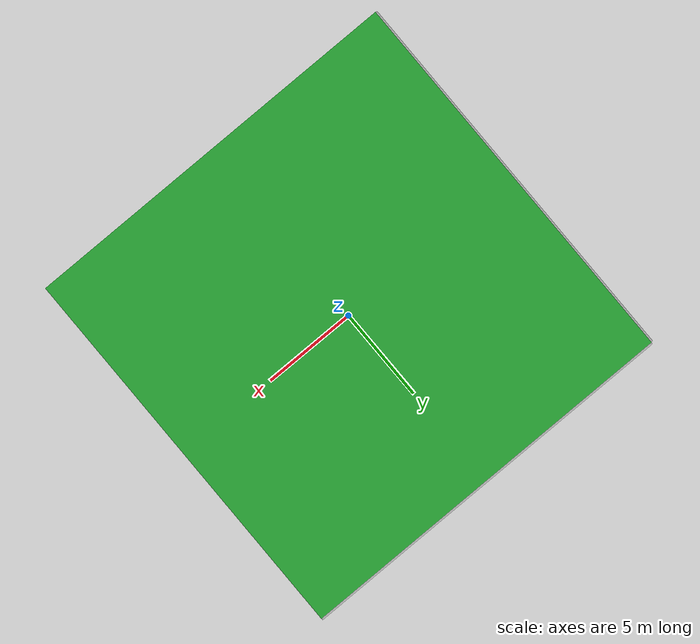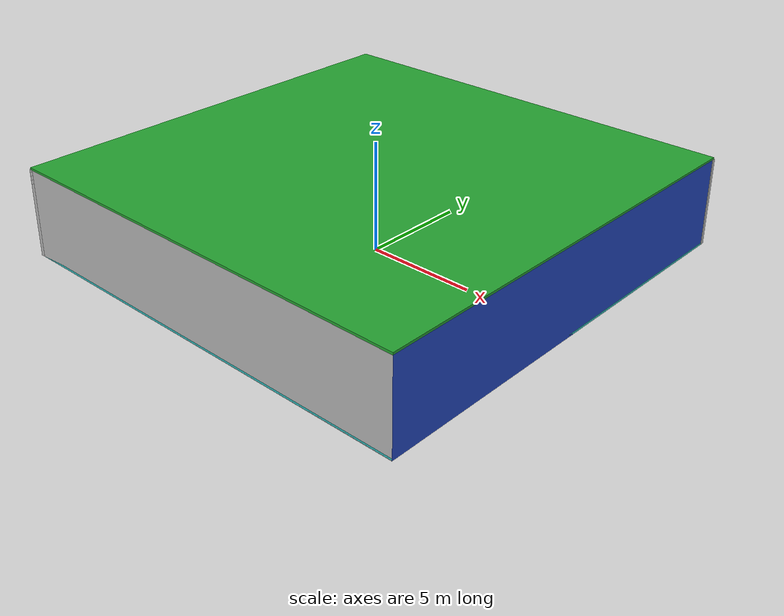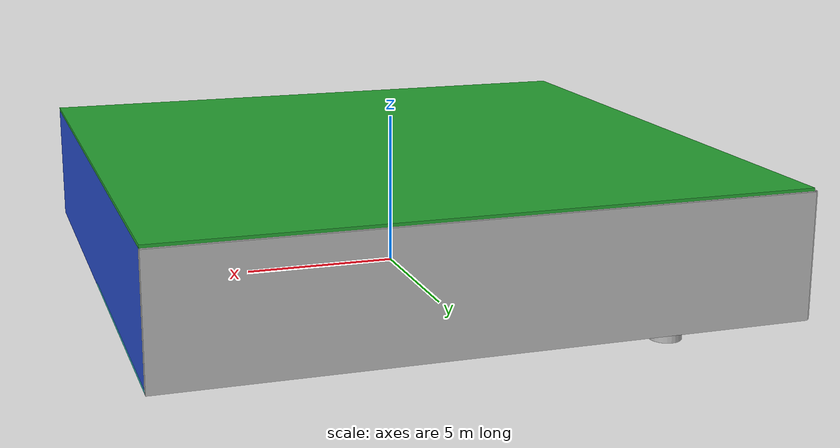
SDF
<sdf version="1.4">
 <world name="default">
  <physics type="ode">
   <max_step_size>0.001</max_step_size>
   <real_time_factor>1</real_time_factor>
   <real_time_update_rate>1000</real_time_update_rate>
   <gravity>0 0 -9.8</gravity>
  </physics>
  <scene><ambient>0.4 0.4 0.4 1</ambient><background>0.7 0.7 0.7 1</background><shadows>1</shadows></scene>
  <model name="Surrounding">
   <static>1</static>
   <link name="Ceiling">
    <collision name="Ceiling_Collision"><geometry><box><size>20 20 0.1</size></box></geometry></collision>
    <visual name="Ceiling_Visual">
     <geometry><box><size>20 20 0.1</size></box></geometry>
     <material>
      <script><uri>file://media/materials/scripts/gazebo.material</uri><name>Gazebo/Green</name></script>
     </material>
    </visual>
    <pose>0 0 4.05 0 0 0</pose>
   </link>
   <link name="Wall_South">
    <collision name="Wall_South_Collision">
     <geometry><box><size>20 0 4</size></box></geometry>
     <pose>0 0 2 0 -0 0</pose>
    </collision>
    <visual name="Wall_South_Visual">
     <pose>0 0 2 0 -0 0</pose>
     <geometry><box><size>20 0 4</size></box></geometry>
     <material>
      <script><uri>file://media/materials/scripts/gazebo.material</uri><name>Gazebo/LightOn</name></script>
     </material>
    </visual>
    <velocity_decay><linear>0</linear><angular>0</angular></velocity_decay>
    <pose>0 -10 0 0 -0 0</pose>
   </link>
   <link name="Wall_East">
    <collision name="Wall_21_Collision">
     <geometry><box><size>20 0 4</size></box></geometry>
     <pose>0 0 2 0 -0 0</pose>
    </collision>
    <visual name="Wall_21_Visual">
     <pose>0 0 2 0 -0 0</pose>
     <geometry><box><size>20 0 4</size></box></geometry>
     <material>
      <script><uri>file://media/materials/scripts/gazebo.material</uri><name>Gazebo/BlueGlow</name></script>
     </material>
    </visual>
    <velocity_decay><linear>0</linear><angular>0</angular></velocity_decay>
    <pose>10 0 0 0 -0 1.5708</pose>
   </link>
   <link name="Wall_North">
    <collision name="Wall_22_Collision">
     <geometry><box><size>20 0.2 4</size></box></geometry>
     <pose>0 0 2 0 -0 0</pose>
    </collision>
    <visual name="Wall_22_Visual">
     <pose>0 0 2 0 -0 0</pose>
     <geometry><box><size>20 0.2 4</size></box></geometry>
     <material>
      <script><uri>file://media/materials/scripts/gazebo.material</uri><name>Gazebo/LightOff</name></script>
     </material>
    </visual>
    <velocity_decay><linear>0</linear><angular>0</angular></velocity_decay>
    <pose>0 10 0 0 -0 0</pose>
   </link>
   <link name="Wall_West">
    <collision name="Wall_23_Collision">
     <geometry><box><size>20 0.2 4</size></box></geometry>
     <pose>0 0 2 0 -0 0</pose>
    </collision>
    <visual name="Wall_23_Visual">
     <pose>0 0 2 0 -0 0</pose>
     <geometry><box><size>20 0.2 4</size></box></geometry>
     <material>
      <script><uri>file://media/materials/scripts/gazebo.material</uri><name>Gazebo/CloudySky</name></script>
     </material>
    </visual>
    <velocity_decay><linear>0</linear><angular>0</angular></velocity_decay>
    <pose>-10 0 0 0 0 -1.5708</pose>
   </link>
   <link name="Ground_link">
    <collision name="collision">
     <pose>0 0 .05 0 -0 0</pose>
     <geometry><box><size>20 20 0.1</size></box></geometry>
    </collision>
    <visual name="visual">
     <pose>0 0 .05 0 -0 0</pose>
     <geometry><box><size>20 20 0.1</size></box></geometry>
     <material>
      <script><uri>file://media/materials/scripts/gazebo.material</uri><name>Gazebo/TurquoiseGlow</name></script>
     </material>
    </visual>
   </link>
   <static>1</static>
  </model>
  <spherical_coordinates>
   <surface_model>EARTH_WGS84</surface_model>
   <latitude_deg>0</latitude_deg>
   <longitude_deg>0</longitude_deg>
   <elevation>0</elevation>
   <heading_deg>0</heading_deg>
  </spherical_coordinates>
  <light name="lightball_0" type="diffuse">
   <diffuse>0.8 0.8 0.8 1</diffuse>
   <specular>0.2 0.2 0.2 1</specular>
   <attenuation>
    <range>100</range>
    <constant>0.7</constant>
    <linear>0.01</linear>
    <quadratic>0.001</quadratic>
   </attenuation>
   <direction>-0.5 0.1 -0.9</direction>
   <pose>0.14890121639 -6.4431062316 2.58292959252 0 0 0</pose>
  </light>
  <light name="lightball_1" type="diffuse">
   <diffuse>0.8 0.8 0.8 1</diffuse>
   <specular>0.2 0.2 0.2 1</specular>
   <attenuation>
    <range>100</range>
    <constant>0.7</constant>
    <linear>0.01</linear>
    <quadratic>0.001</quadratic>
   </attenuation>
   <direction>-0.5 0.1 -0.9</direction>
   <pose>-3.10546994066 7.18456205567 3.16803695003 0 0 0</pose>
  </light>
  <light name="lightball_2" type="diffuse">
   <diffuse>0.8 0.8 0.8 1</diffuse>
   <specular>0.2 0.2 0.2 1</specular>
   <attenuation>
    <range>100</range>
    <constant>0.7</constant>
    <linear>0.01</linear>
    <quadratic>0.001</quadratic>
   </attenuation>
   <direction>-0.5 0.1 -0.9</direction>
   <pose>6.2492673444 8.14241761328 2.92204146449 0 0 0</pose>
  </light>
  <light name="lightball_3" type="diffuse">
   <diffuse>0.8 0.8 0.8 1</diffuse>
   <specular>0.2 0.2 0.2 1</specular>
   <attenuation>
    <range>100</range>
    <constant>0.7</constant>
    <linear>0.01</linear>
    <quadratic>0.001</quadratic>
   </attenuation>
   <direction>-0.5 0.1 -0.9</direction>
   <pose>-1.27469888282 1.88182955799 2.09107198263 0 0 0</pose>
  </light>
  <light name="lightball_4" type="diffuse">
   <diffuse>0.8 0.8 0.8 1</diffuse>
   <specular>0.2 0.2 0.2 1</specular>
   <attenuation>
    <range>100</range>
    <constant>0.7</constant>
    <linear>0.01</linear>
    <quadratic>0.001</quadratic>
   </attenuation>
   <direction>-0.5 0.1 -0.9</direction>
   <pose>0.0206812226098 2.81632660003 3.64507138465 0 0 0</pose>
  </light>
  <include>
   <uri>model://textured_shapes</uri>
   <pose>-7.9546282074 3.87224211297 0 0 0 2.42393928762</pose>
  </include>
  <include>
   <uri>model://construction_cone</uri>
   <pose>-3.70000744875 -7.30870175353 0 0 0 2.44211232826</pose>
  </include>
  <include><uri>model://table</uri><pose>-4.80716774178 4.34417384072 0 0 0 0.463302549669</pose></include>
  <include>
   <uri>model://textured_shapes</uri>
   <pose>-4.87727448969 7.77838399347 0 0 0 0.696516534787</pose>
  </include>
  <include>
   <uri>model://construction_cone</uri>
   <pose>-1.58544812641 -3.98041276311 0 0 0 2.45829962978</pose>
  </include>
 </world>
</sdf>

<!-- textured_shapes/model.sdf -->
<sdf version="1.6">
  <model name="textured_shapes">
    <pose>0 0 0.5 0 0 0</pose>
    <link name="box">
      <pose>0 -1.5 0 0 0 0</pose>
      <collision name="collision">
        <geometry>
          <box>
            <size>1 1 1</size>
          </box>
        </geometry>
      </collision>
      <visual name="visual">
        <geometry>
          <box>
            <size>1 1 1</size>
          </box>
        </geometry>
        <material>
          <script>
            <uri>model://../model_source/models/textured_shapes/materials/scripts</uri>
            <uri>model://../model_source/models/textured_shapes/materials/textures</uri>
            <name>TexturedShape/Squares</name>
          </script>
        </material>
      </visual>
    </link>
    <link name="sphere">
      <collision name="collision">
        <geometry>
          <sphere>
            <radius>0.5</radius>
          </sphere>
        </geometry>
      </collision>
      <visual name="visual">
        <geometry>
          <sphere>
            <radius>0.5</radius>
          </sphere>
        </geometry>
        <material>
          <script>
            <uri>model://../model_source/models/textured_shapes/materials/scripts</uri>
            <uri>model://../model_source/models/textured_shapes/materials/textures</uri>
            <name>TexturedShape/Squares</name>
          </script>
        </material>
      </visual>
    </link>
    <link name="cylinder">
      <pose>0 1.5 0 0 0 0</pose>
      <collision name="collision">
        <geometry>
          <cylinder>
            <radius>0.5</radius>
            <length>1</length>
          </cylinder>
        </geometry>
      </collision>
      <visual name="visual">
        <geometry>
          <cylinder>
            <radius>0.5</radius>
            <length>1</length>
          </cylinder>
        </geometry>
        <material>
          <script>
            <uri>model://../model_source/models/textured_shapes/materials/scripts</uri>
            <uri>model://../model_source/models/textured_shapes/materials/textures</uri>
            <name>TexturedShape/Squares</name>
          </script>
        </material>
      </visual>
    </link>
  </model>
</sdf>

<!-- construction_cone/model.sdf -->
<sdf version="1.5">
  <model name="Construction Cone">
    <link name="link">
      <collision name="collision">
        <geometry>
          <mesh>
            <scale>10 10 10</scale>
            <uri>file://isr-testbed/construction_cone/meshes/construction_cone.dae</uri>
          </mesh>
        </geometry>
      </collision>
      <visual name="visual">
        <geometry>
          <mesh>
            <scale>10 10 10</scale>
            <uri>file://isr-testbed/construction_cone/meshes/construction_cone.dae</uri>
          </mesh>
        </geometry>
      </visual>
    </link>
  </model>
</sdf>

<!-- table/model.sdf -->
<sdf version="1.5">
  <model name="table">
    <static>true</static>
    <link name="link">
      <collision name="surface">
        <pose>0 0 1.0 0 0 0</pose>
        <geometry>
          <box>
            <size>1.5 0.8 0.03</size>
          </box>
        </geometry>
        <surface>
          <friction>
            <ode>
              <mu>0.6</mu>
              <mu2>0.6</mu2>
            </ode>
          </friction>
        </surface>
      </collision>
      <visual name="visual1">
        <pose>0 0 1.0 0 0 0</pose>
        <geometry>
          <box>
            <size>1.5 0.8 0.03</size>
          </box>
        </geometry>
        <material>
          <script>
            <uri>model://media/materials/scripts/gazebo.material</uri>
            <name>Gazebo/Wood</name>
          </script>
        </material>
      </visual>
      <collision name="front_left_leg">
        <pose>0.68 0.38 0.5 0 0 0</pose>
        <geometry>
          <cylinder>
            <radius>0.02</radius>
            <length>1.0</length>
          </cylinder>
        </geometry>
      </collision>
      <visual name="front_left_leg">
        <pose>0.68 0.38 0.5 0 0 0</pose>
        <geometry>
          <cylinder>
            <radius>0.02</radius>
            <length>1.0</length>
          </cylinder>
        </geometry>
        <material>
          <script>
            <uri>model://media/materials/scripts/gazebo.material</uri>
            <name>Gazebo/Grey</name>
          </script>
        </material>
      </visual>
      <collision name="front_right_leg">
        <pose>0.68 -0.38 0.5 0 0 0</pose>
        <geometry>
          <cylinder>
            <radius>0.02</radius>
            <length>1.0</length>
          </cylinder>
        </geometry>
      </collision>
      <visual name="front_right_leg">
        <pose>0.68 -0.38 0.5 0 0 0</pose>
        <geometry>
          <cylinder>
            <radius>0.02</radius>
            <length>1.0</length>
          </cylinder>
        </geometry>
        <material>
          <script>
            <uri>model://media/materials/scripts/gazebo.material</uri>
            <name>Gazebo/Grey</name>
          </script>
        </material>
      </visual>
      <collision name="back_right_leg">
        <pose>-0.68 -0.38 0.5 0 0 0</pose>
        <geometry>
          <cylinder>
            <radius>0.02</radius>
            <length>1.0</length>
          </cylinder>
        </geometry>
      </collision>
      <visual name="back_right_leg">
        <pose>-0.68 -0.38 0.5 0 0 0</pose>
        <geometry>
          <cylinder>
            <radius>0.02</radius>
            <length>1.0</length>
          </cylinder>
        </geometry>
        <material>
          <script>
            <uri>model://media/materials/scripts/gazebo.material</uri>
            <name>Gazebo/Grey</name>
          </script>
        </material>
      </visual>
      <collision name="back_left_leg">
        <pose>-0.68 0.38 0.5 0 0 0</pose>
        <geometry>
          <cylinder>
            <radius>0.02</radius>
            <length>1.0</length>
          </cylinder>
        </geometry>
      </collision>
      <visual name="back_left_leg">
        <pose>-0.68 0.38 0.5 0 0 0</pose>
        <geometry>
          <cylinder>
            <radius>0.02</radius>
            <length>1.0</length>
          </cylinder>
        </geometry>
        <material>
          <script>
            <uri>model://media/materials/scripts/gazebo.material</uri>
            <name>Gazebo/Grey</name>
          </script>
        </material>
      </visual>
    </link>
  </model>
</sdf>
